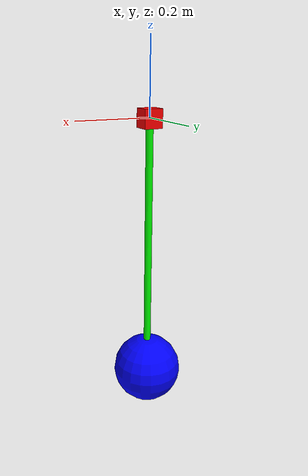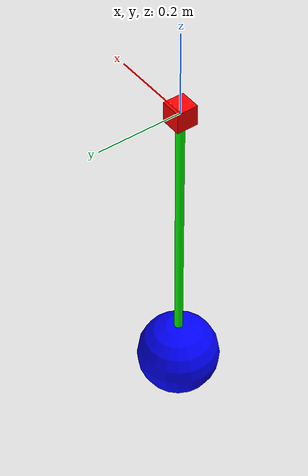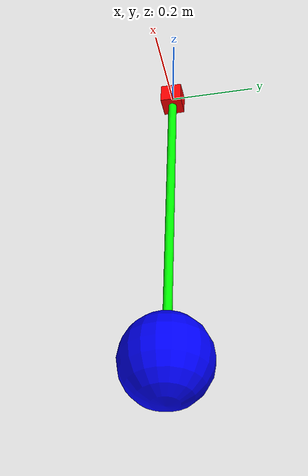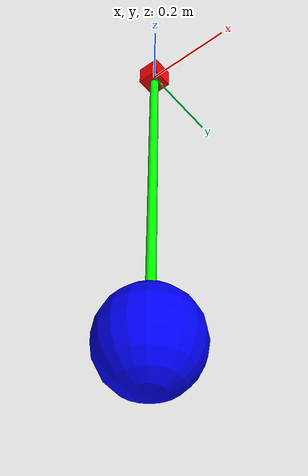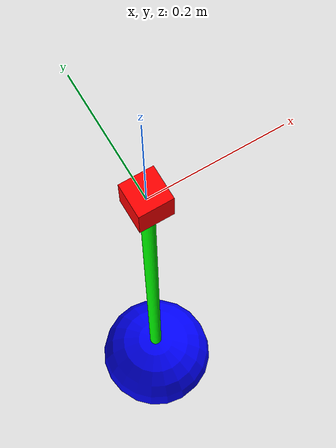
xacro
<robot name="pendulum" xmlns:xacro="http://wiki.ros.org/xacro">
    <!-- calculate inertial -->
    <xacro:include filename="inertial.xacro" />
    <!-- main  -->
    <xacro:include filename="pendulum_template.xacro" />

    <!--
        run the following cmd to generate urdf file
        rosrun xacro xacro filename.xacro>filename_new.urdf
    -->
</robot>

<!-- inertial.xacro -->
<robot name="base" xmlns:xacro="http://wiki.ros.org/xacro">
    <!-- Xacro for inertia matrix -->
    <xacro:macro name="sphere_inertial_matrix" params="m r">
        <inertial>
            <origin xyz="0 0 0" rpy="0 0 0" />
            <mass value="${m}" />
            <inertia ixx="${2*m*r*r/5}" ixy="0" ixz="0"
                    iyy="${2*m*r*r/5}" iyz="0"
                    izz="${2*m*r*r/5}" />
        </inertial>
    </xacro:macro>

    <xacro:macro name="cylinder_inertial_matrix" params="m r h">
        <inertial>
            <origin xyz="0 0 0" rpy="0 0 0" />
            <mass value="${m}" />
            <inertia ixx="${m*(3*r*r+h*h)/12}" ixy = "0" ixz = "0"
                    iyy="${m*(3*r*r+h*h)/12}" iyz = "0"
                    izz="${m*r*r/2}" />
        </inertial>
    </xacro:macro>

    <xacro:macro name="Box_inertial_matrix" params="m l w h">
       <inertial>
            <origin xyz="0 0 0" rpy="0 0 0" />
            <mass value="${m}" />
            <inertia ixx="${m*(h*h + l*l)/12}" ixy = "0" ixz = "0"
                    iyy="${m*(w*w + l*l)/12}" iyz= "0"
                    izz="${m*(w*w + h*h)/12}" />
       </inertial>
   </xacro:macro>
</robot>

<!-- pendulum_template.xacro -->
<robot name="pendulum" xmlns:xacro="http://wiki.ros.org/xacro">

    <material name="red">
        <color rgba="1 0 0 1"/>
    </material>
    <material name="green">
        <color rgba="0 1 0 1"/>
    </material>
    <material name="blue">
        <color rgba="0 0 1 1"/>
    </material>

    <!-- change value for different stairs -->
    <xacro:property name="rod_mass" value="0.1" />
    <xacro:property name="rod_length" value="0.75" />
    <xacro:property name="rod_radius" value="0.01" />
    <xacro:property name="ball_radius" value="0.1" />
    <xacro:property name="ball_mass" value="5" />

    <link name="link_base">
        <xacro:Box_inertial_matrix m="0.01" l="0.05" w="0.05" h="0.05" />
        <visual>
            <origin xyz="0 0 0" rpy="0 0 0" />
            <geometry>
                <box size="0.05 0.05 0.05" />
            </geometry>
            <material name="red" />
        </visual>
        <collision>
            <origin xyz="0 0 0" rpy="0 0 0" />
            <geometry>
                <box size="0.05 0.05 0.05" />
            </geometry>
        </collision>
    </link>

    <link name="link_rod">
        <xacro:cylinder_inertial_matrix m="${rod_mass}" r="${rod_radius}" h="${rod_length}" />
        <visual>
            <origin xyz="0 0 ${-rod_length/2}" rpy="0 0 0" />
            <geometry>
                <cylinder radius="${rod_radius}" length="${rod_length}" />
            </geometry>
            <material name="green" />
        </visual>
        <collision>
            <origin xyz="0 0 ${-rod_length/2}" rpy="0 0 0" />
            <geometry>
                <cylinder radius="${rod_radius}" length="${rod_length}" />
            </geometry>
        </collision>
    </link>
    <joint name="joint_rod" type="revolute">
        <origin xyz="0 0 0" rpy="0 0 0" />
        <parent link="link_base" />
        <child link="link_rod" />
        <axis xyz="1 0 0" />
        <limit
            lower="-1.57"
            upper="1.57"
            effort="100"
            velocity="100" />
    </joint>

    <link name="link_ball">
        <xacro:sphere_inertial_matrix m="${ball_mass}" r="${ball_radius}" />
        <visual>
            <origin xyz="0 0 0" rpy="0 0 0" />
            <geometry>
                <sphere radius="${ball_radius}"/>
            </geometry>
            <material name="blue" />
        </visual>
        <collision>
            <origin xyz="0 0 0" rpy="0 0 0" />
            <geometry>
                <sphere radius="${ball_radius}"/>
            </geometry>
        </collision>
    </link>
    <joint name="joint_ball" type="fixed">
        <parent link="link_rod" />
        <child link="link_ball" />
        <origin xyz="0 0 ${-rod_length}" />
    </joint>

</robot>
